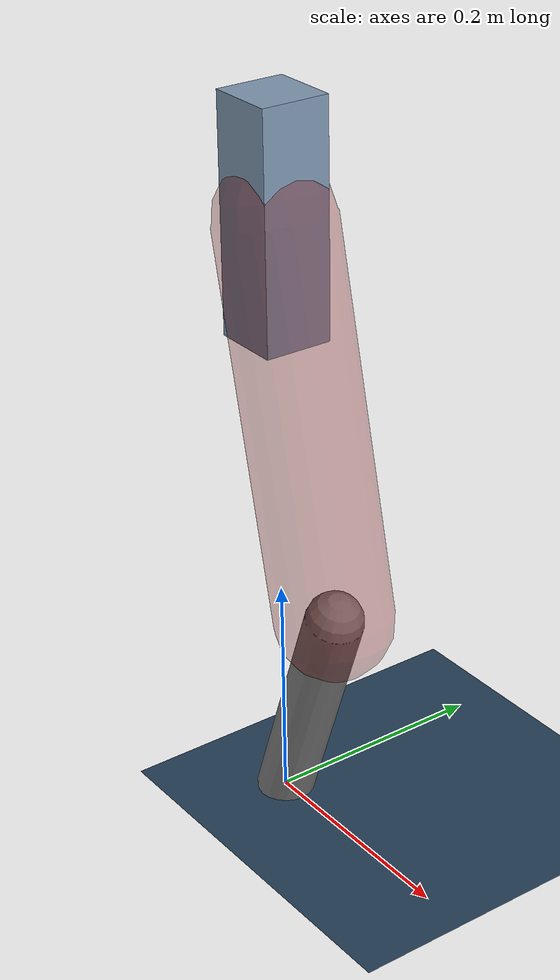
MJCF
<mujoco model="Hopper2D">
	<compiler inertiafromgeom="true" angle="radian" />
	<option timestep="0.001" integrator="implicit" cone="elliptic" solver="Newton" tolerance="1e-10" />

	<default>
		<geom contype="1" conaffinity="1" condim="3" friction="2 0.005 0.0001" solref="0.005 1" />
		<joint limited="true" damping="0.1" />
	</default>

	<asset>
		<texture name="skybox" type="skybox" builtin="gradient" rgb1=".4 .6 .8" rgb2="0 0 0" width="800" height="800" />
		<texture name="grid" type="2d" builtin="checker" rgb1=".1 .2 .3" rgb2=".2 .3 .4" width="300" height="300" mark="edge" markrgb=".2 .3 .4" />
		<material name="ground" texture="grid" texrepeat="1 1" texuniform="true" reflectance="0.1" />
		<material name="leg" rgba="0.5 0.6 0.7 1" />
	</asset>

	<worldbody>

		<geom name="floor" type="plane" size="5 5 0.25" material="ground" />

		<light directional="false" diffuse="0.8 0.8 0.8" specular="0.3 0.3 0.3" pos="0 0 2" dir="0 0 -1" />
		<light mode="targetbodycom" target="base" directional="false" diffuse="0.8 0.8 0.8" specular="0.3 0.3 0.3" pos="0 0 2" dir="0 0 -1" />

		<camera name="fixed" pos="0 -2 1" xyaxes="1 0 0 0 0 1" />
		<camera name="tracking" mode="trackcom" pos="0 -3 1" />

		<body name="root" pos="0 0 0.5295333813668068">
			<joint name="slide_x" type="slide" axis="1 0 0" range="-100 100" />
			<joint name="slide_z" type="slide" axis="0 0 1" range="0 10" />

			<body name="base" pos="0 0 0">
				<geom name="torso" type="box" size="0.03 0.03 0.1" mass="1.981" material="leg" />

				<body name="link1" pos="0 0 0" euler="0 1.3456087863171078 0">
					<joint type="hinge" axis="0 -1 0" pos="0 0 0" name="hinge1" limited="true" range="-3.14 3.14" stiffness="0" damping="0.1" />
					<geom name="thigh" type="capsule" fromto="0 0 0 0.333209528155999 0 0" size="0.05" rgba="0.5 0 0 0.3" mass="1.0797657260211972" />

					<body name="link2" pos="0.333209528155999 0 0" euler="0 0.5737531467455498 0">
						<joint type="hinge" axis="0 -1 0" pos="0 0 0" name="hinge2" limited="true" range="-3.14 3.14" stiffness="0" damping="0.1" />
						<geom name="shank" type="capsule" fromto="0 0 0 0.2178365512761536 0 0" size="0.025" mass="0.4158692410209229" />

					</body>
				</body>
			</body>
		</body>
	</worldbody>

	<actuator>
		<motor name="torque1" joint="hinge1" ctrlrange="-28.326807524174274 28.326807524174274" ctrllimited="true" gear="1" />
		<motor name="torque2" joint="hinge2" ctrlrange="-81.92912586995405 81.92912586995405" ctrllimited="true" gear="1" />
	</actuator>
</mujoco>
